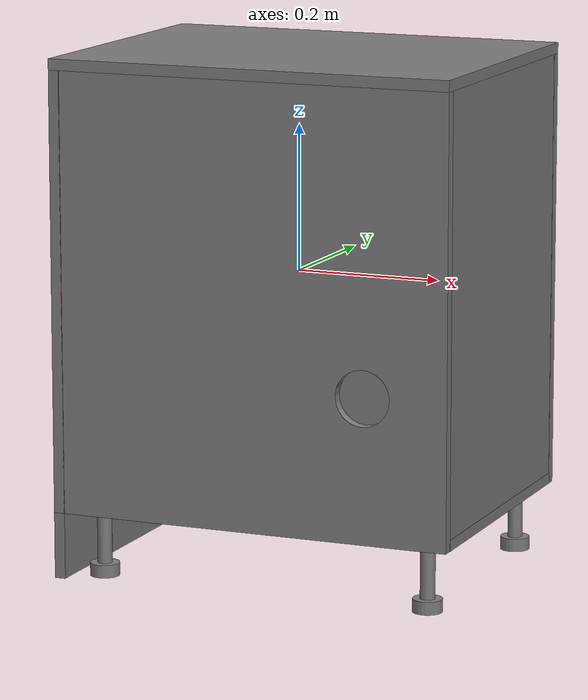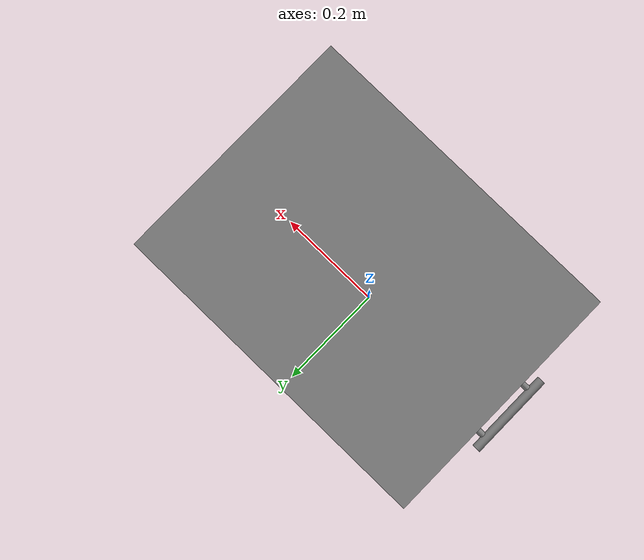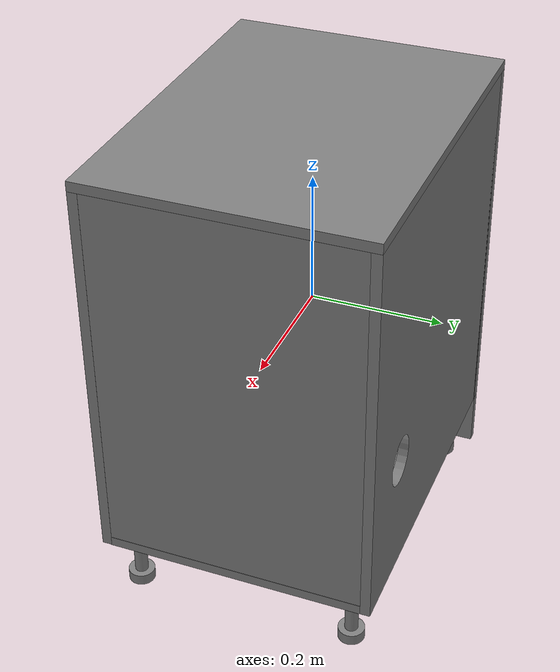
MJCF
<mujoco model="partnet_ub5271dfa-56bd-418c-9588-e94f39c12e42">
    <compiler angle="radian" />
    <size njmax="500" nconmax="100" />
    <asset>
        <mesh name="original-30" file="original-30.stl" scale="0.5 0.5 0.5" />
        <mesh name="original-31" file="original-31.stl" scale="0.5 0.5 0.5" />
        <mesh name="original-32" file="original-32.stl" scale="0.5 0.5 0.5" />
        <mesh name="original-34" file="original-34.stl" scale="0.5 0.5 0.5" />
        <mesh name="original-35" file="original-35.stl" scale="0.5 0.5 0.5" />
        <mesh name="original-36" file="original-36.stl" scale="0.5 0.5 0.5" />
        <mesh name="original-56" file="original-56.stl" scale="0.5 0.5 0.5" />
        <mesh name="original-57" file="original-57.stl" scale="0.5 0.5 0.5" />
        <mesh name="original-58" file="original-58.stl" scale="0.5 0.5 0.5" />
        <mesh name="original-54" file="original-54.stl" scale="0.5 0.5 0.5" />
        <mesh name="original-22" file="original-22.stl" scale="0.5 0.5 0.5" />
        <mesh name="original-24" file="original-24.stl" scale="0.5 0.5 0.5" />
        <mesh name="original-21" file="original-21.stl" scale="0.5 0.5 0.5" />
        <mesh name="original-41" file="original-41.stl" scale="0.5 0.5 0.5" />
        <mesh name="original-52" file="original-52.stl" scale="0.5 0.5 0.5" />
        <mesh name="original-26" file="original-26.stl" scale="0.5 0.5 0.5" />
        <mesh name="original-3" file="original-3.stl" scale="0.5 0.5 0.5" />
        <mesh name="original-44" file="original-44.stl" scale="0.5 0.5 0.5" />
        <mesh name="original-16" file="original-16.stl" scale="0.5 0.5 0.5" />
        <mesh name="original-8" file="original-8.stl" scale="0.5 0.5 0.5" />
        <mesh name="original-13" file="original-13.stl" scale="0.5 0.5 0.5" />
        <mesh name="original-9" file="original-9.stl" scale="0.5 0.5 0.5" />
        <mesh name="original-45" file="original-45.stl" scale="0.5 0.5 0.5" />
        <mesh name="original-5" file="original-5.stl" scale="0.5 0.5 0.5" />
        <mesh name="original-27" file="original-27.stl" scale="0.5 0.5 0.5" />
        <mesh name="original-51" file="original-51.stl" scale="0.5 0.5 0.5" />
        <mesh name="original-50" file="original-50.stl" scale="0.5 0.5 0.5" />
        <mesh name="original-6" file="original-6.stl" scale="0.5 0.5 0.5" />
        <mesh name="original-48" file="original-48.stl" scale="0.5 0.5 0.5" />
        <mesh name="original-11" file="original-11.stl" scale="0.5 0.5 0.5" />
        <mesh name="original-38" file="original-38.stl" scale="0.5 0.5 0.5" />
        <mesh name="original-18" file="original-18.stl" scale="0.5 0.5 0.5" />
        <mesh name="original-25" file="original-25.stl" scale="0.5 0.5 0.5" />
        <mesh name="original-17" file="original-17.stl" scale="0.5 0.5 0.5" />
        <mesh name="original-12" file="original-12.stl" scale="0.5 0.5 0.5" />
        <mesh name="original-42" file="original-42.stl" scale="0.5 0.5 0.5" />
        <mesh name="original-20" file="original-20.stl" scale="0.5 0.5 0.5" />
        <mesh name="original-47" file="original-47.stl" scale="0.5 0.5 0.5" />
        <mesh name="original-14" file="original-14.stl" scale="0.5 0.5 0.5" />
    </asset>
    <worldbody>
    <body>
        <body name="object">
        <geom quat="0.5 0.5 -0.5 -0.5" type="mesh" group="0" mesh="original-21" conaffinity="0" contype="0" />
        <geom quat="0.5 0.5 -0.5 -0.5" type="mesh" group="0" mesh="original-41" conaffinity="0" contype="0" />
        <geom quat="0.5 0.5 -0.5 -0.5" type="mesh" group="0" mesh="original-52" conaffinity="0" contype="0" />
        <geom quat="0.5 0.5 -0.5 -0.5" type="mesh" group="0" mesh="original-26" conaffinity="0" contype="0" />
        <geom quat="0.5 0.5 -0.5 -0.5" type="mesh" group="0" mesh="original-3" conaffinity="0" contype="0" />
        <geom quat="0.5 0.5 -0.5 -0.5" type="mesh" group="0" mesh="original-44" conaffinity="0" contype="0" />
        <geom quat="0.5 0.5 -0.5 -0.5" type="mesh" group="0" mesh="original-16" conaffinity="0" contype="0" />
        <geom quat="0.5 0.5 -0.5 -0.5" type="mesh" group="0" mesh="original-8" conaffinity="0" contype="0" />
        <geom quat="0.5 0.5 -0.5 -0.5" type="mesh" group="0" mesh="original-13" conaffinity="0" contype="0" />
        <geom quat="0.5 0.5 -0.5 -0.5" type="mesh" group="0" mesh="original-9" conaffinity="0" contype="0" />
        <geom quat="0.5 0.5 -0.5 -0.5" type="mesh" group="0" mesh="original-45" conaffinity="0" contype="0" />
        <geom quat="0.5 0.5 -0.5 -0.5" type="mesh" group="0" mesh="original-5" conaffinity="0" contype="0" />
        <geom quat="0.5 0.5 -0.5 -0.5" type="mesh" group="0" mesh="original-27" conaffinity="0" contype="0" />
        <geom quat="0.5 0.5 -0.5 -0.5" type="mesh" group="0" mesh="original-51" conaffinity="0" contype="0" />
        <geom quat="0.5 0.5 -0.5 -0.5" type="mesh" group="0" mesh="original-50" conaffinity="0" contype="0" />
        <geom quat="0.5 0.5 -0.5 -0.5" type="mesh" group="0" mesh="original-6" conaffinity="0" contype="0" />
        <geom quat="0.5 0.5 -0.5 -0.5" type="mesh" group="0" mesh="original-48" conaffinity="0" contype="0" />
        <geom quat="0.5 0.5 -0.5 -0.5" type="mesh" group="0" mesh="original-11" conaffinity="0" contype="0" />
        <geom quat="0.5 0.5 -0.5 -0.5" type="mesh" group="0" mesh="original-38" conaffinity="0" contype="0" />
        <geom quat="0.5 0.5 -0.5 -0.5" type="mesh" group="0" mesh="original-18" conaffinity="0" contype="0" />
        <geom quat="0.5 0.5 -0.5 -0.5" type="mesh" group="0" mesh="original-25" conaffinity="0" contype="0" />
        <geom quat="0.5 0.5 -0.5 -0.5" type="mesh" group="0" mesh="original-17" conaffinity="0" contype="0" />
        <geom quat="0.5 0.5 -0.5 -0.5" type="mesh" group="0" mesh="original-12" conaffinity="0" contype="0" />
        <geom quat="0.5 0.5 -0.5 -0.5" type="mesh" group="0" mesh="original-42" conaffinity="0" contype="0" />
        <geom quat="0.5 0.5 -0.5 -0.5" type="mesh" group="0" mesh="original-20" conaffinity="0" contype="0" />
        <geom quat="0.5 0.5 -0.5 -0.5" type="mesh" group="0" mesh="original-47" conaffinity="0" contype="0" />
        <geom quat="0.5 0.5 -0.5 -0.5" type="mesh" group="0" mesh="original-14" conaffinity="0" contype="0" />
        <body name="link_0" pos="-0.2650525 -0.0236497 0.053983" quat="0.5 0.5 -0.5 -0.5">
            <inertial pos="-0.01188995 -0.0302801 -0.225015" quat="0.998656 0.0516329 -0.00350804 0.00263484" mass="304.365" diaginertia="31.1454 28.4214 18.3932" />
            <joint name="joint_0" pos="0.0 0.0 0.0" axis="0 0 1" type="slide" limited="true" range="0.0 0.5" />
            <geom pos="-0.0236497 -0.053983 -0.2650525" type="mesh" group="0" mesh="original-30" />
            <geom pos="-0.0236497 -0.053983 -0.2650525" type="mesh" group="0" mesh="original-31" />
            <geom pos="-0.0236497 -0.053983 -0.2650525" type="mesh" group="0" mesh="original-32" />
            <geom pos="-0.0236497 -0.053983 -0.2650525" type="mesh" group="0" mesh="original-34" />
            <geom pos="-0.0236497 -0.053983 -0.2650525" type="mesh" group="0" mesh="original-35" />
            <geom pos="-0.0236497 -0.053983 -0.2650525" type="mesh" group="0" mesh="original-36" />
            <geom pos="-0.0236497 -0.053983 -0.2650525" type="mesh" group="0" mesh="original-56" />
            <geom pos="-0.0236497 -0.053983 -0.2650525" type="mesh" group="0" mesh="original-57" />
            <geom pos="-0.0236497 -0.053983 -0.2650525" type="mesh" group="0" mesh="original-58" />
            <geom pos="-0.0236497 -0.053983 -0.2650525" type="mesh" group="0" mesh="original-54" />
            <geom pos="-0.0236497 -0.053983 -0.2650525" type="mesh" group="0" mesh="original-22" />
            <geom pos="-0.0236497 -0.053983 -0.2650525" type="mesh" group="0" mesh="original-24" />
        </body>
    </body>
        <site name="bottom_site" pos="0 0 -0.3" rgba="0 0 0 0" size="0.005" />
        <site name="top_site" pos="0 0 0.3" rgba="0 0 0 0" size="0.005" />
        <site name="horizontal_radius_site" pos="0.3 0 0" rgba="0 0 0 0" size="0.1" />
    </body>
    </worldbody>

</mujoco>
